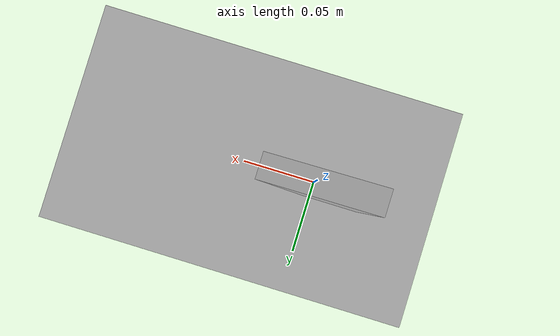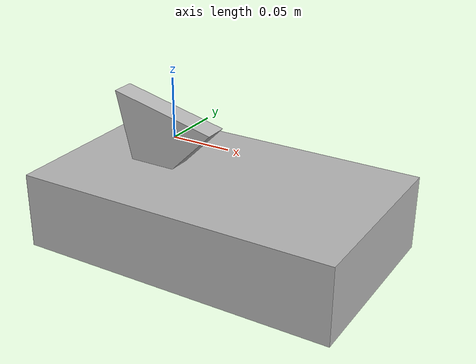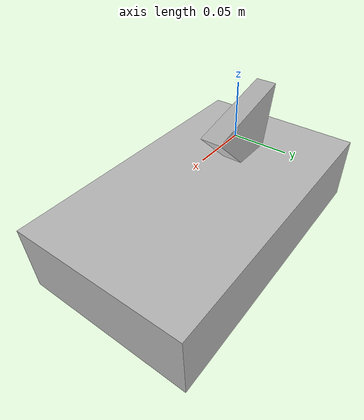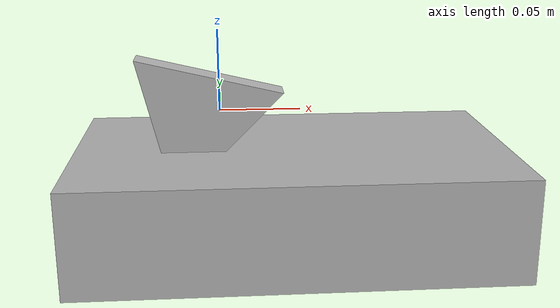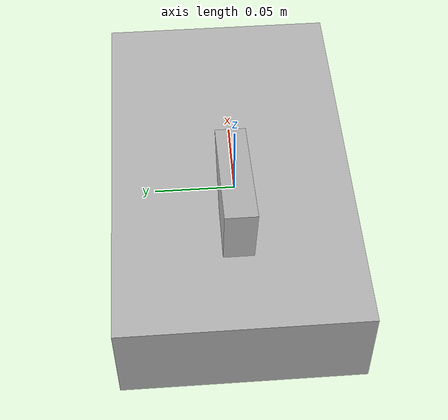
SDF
<sdf version="1.6">
 <world name="test_contact">
  <light name="sun" type="directional">
   <pose>0 0 1000 -0.920673 -1.46746 0</pose>
   <diffuse>0.8 0.8 0.8 1</diffuse>
   <specular>0.2 0.2 0.2 1</specular>
   <attenuation>
    <range>1000</range>
    <constant>0.9</constant>
    <linear>0.01</linear>
    <quadratic>0.001</quadratic>
   </attenuation>
   <direction>-0.5 0.1 -0.9</direction>
  </light>
  <model name="triangle">
   <static>1</static>
   <link name="link">
    <collision name="collision">
     <geometry><mesh><uri>model://triangle/triangle.obj</uri></mesh></geometry>
    </collision>
    <visual name="triangle_visual">
     <geometry><mesh><uri>model://triangle/triangle.obj</uri></mesh></geometry>
    </visual>
   </link>
  </model>
  <gravity>0 0 -9.8</gravity>
  <model name="valkyrie_left">
   <link name="leftFoot">
    <collision name="leftFoot_collision">
     <pose>0.045 0 -0.056 0 -0 0</pose>
     <geometry><box><size>0.27 0.16 0.064</size></box></geometry>
    </collision>
    <visual name="leftFoot_visual">
     <pose>0.045 0 -0.056 0 -0 0</pose>
     <geometry><box><size>0.27 0.16 0.064</size></box></geometry>
    </visual>
   </link>
  </model>
 </world>
</sdf>
